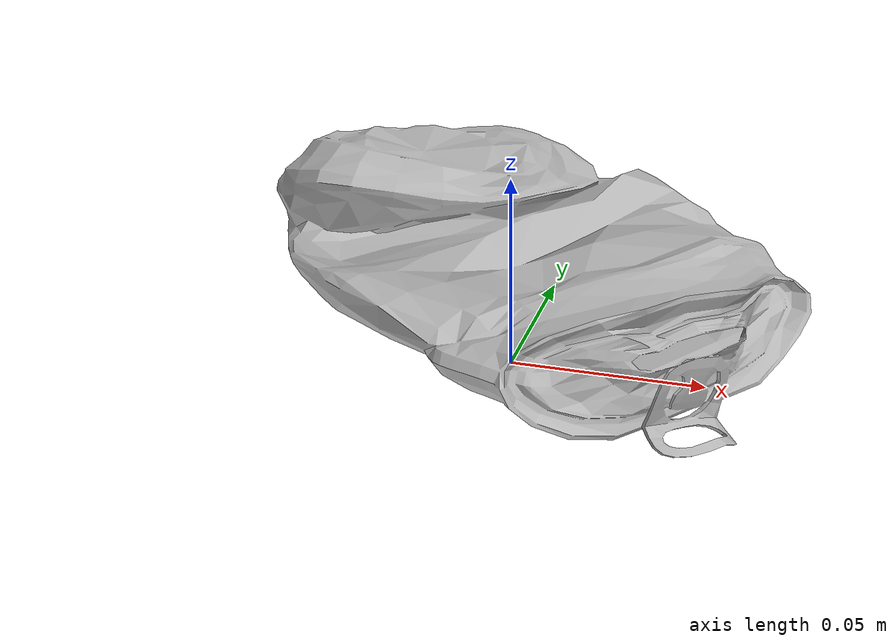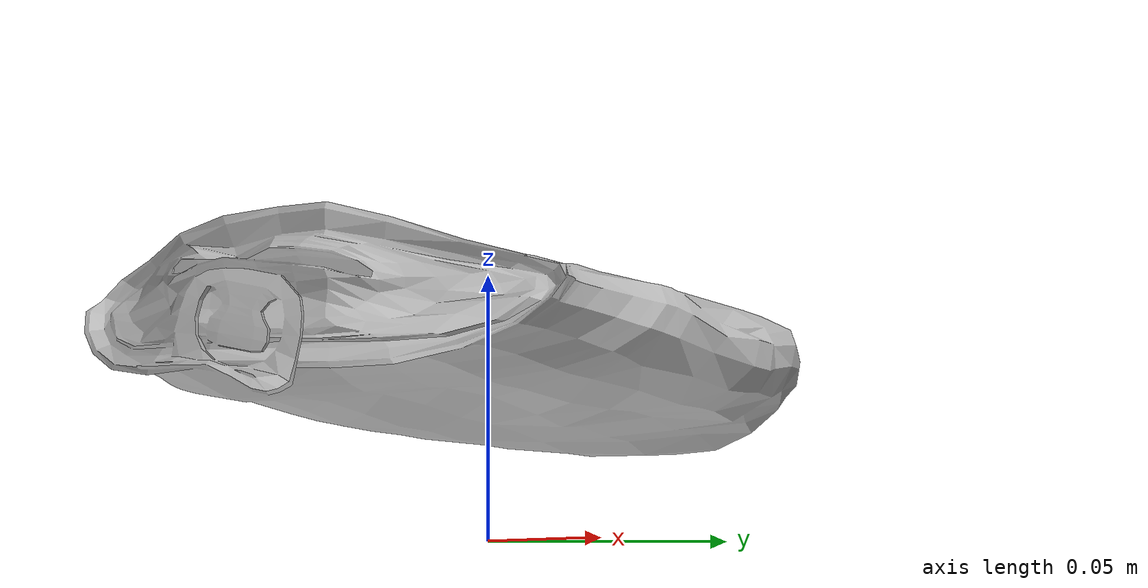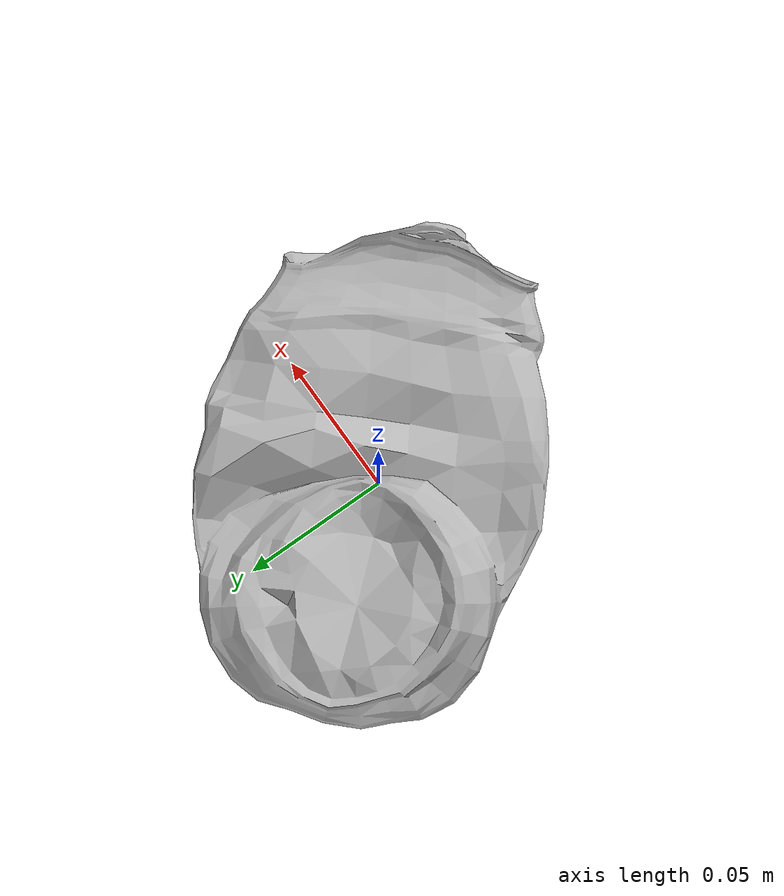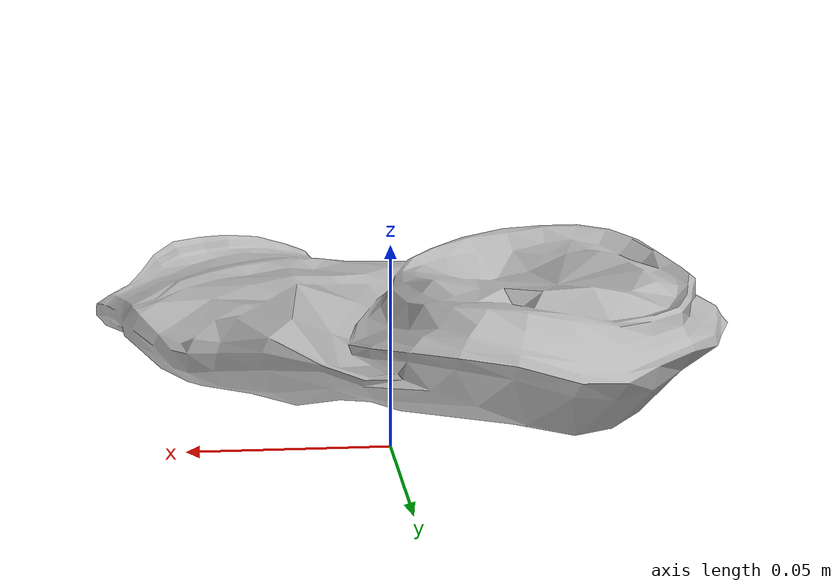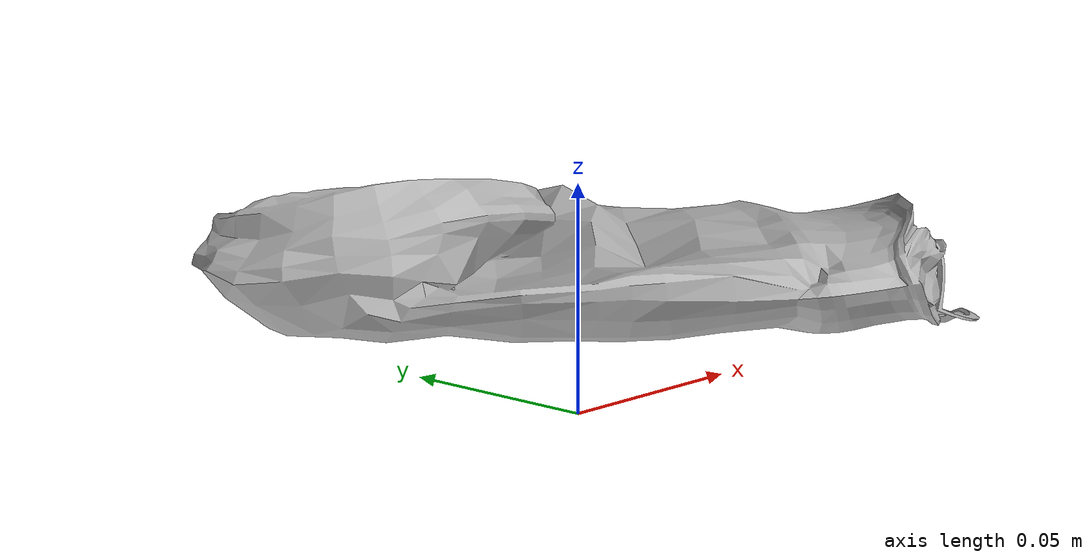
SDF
<?xml version="1.0"?>
<sdf version="1.6">
  <model name="trash_crushed_can_01">
    <static>true</static>
    <pose>0 0 0.0185 0 0 0</pose>
    <link name="link">
      <visual name="visual">
        <cast_shadows>false</cast_shadows>
        <geometry>
          <mesh>
            <uri>model://trash_crushed_can_01/meshes/trash_crushed_can_01.dae</uri>
            <scale>1.0000 1.0000 1.0000</scale>
          </mesh>
        </geometry>
      </visual>
    </link>
  </model>
</sdf>
